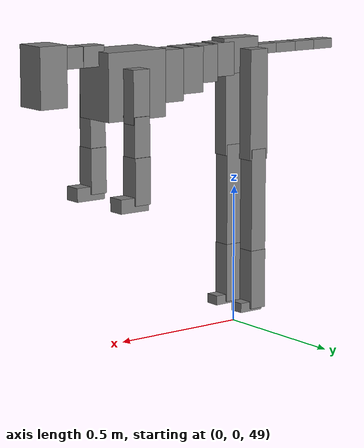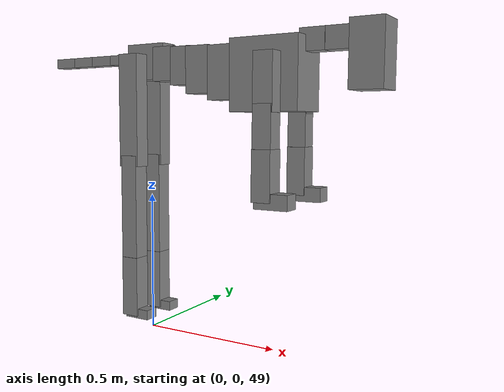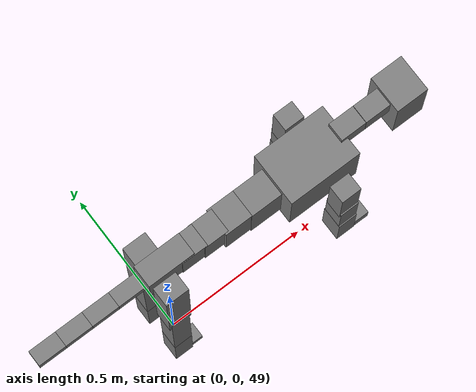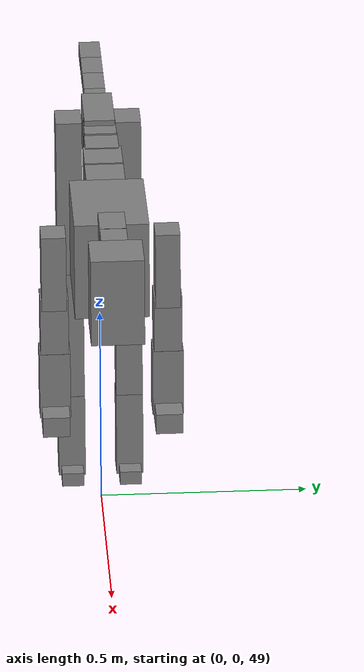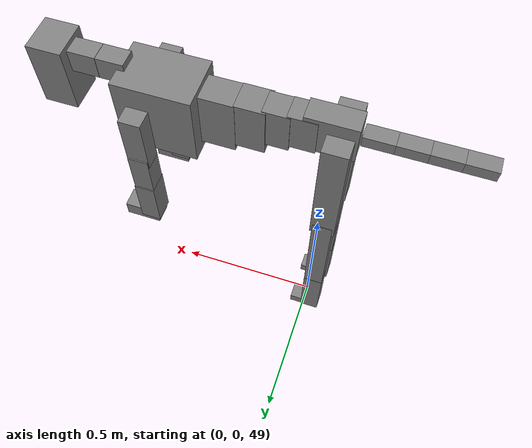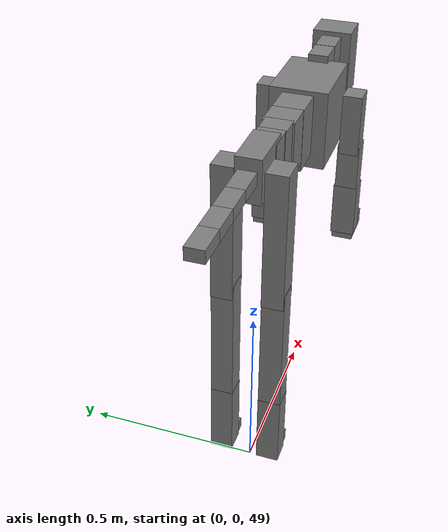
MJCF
<mujoco model="dog">

    <default>
        <joint armature="0.02" stiffness="1" damping="0.2" limited="true"/>
        <geom condim="3" friction="1 0.05 0.05" margin="0.01"/>
        <motor ctrllimited="true" ctrlrange="-1.0 1.0" forcelimited="true" gear="50"/>
    </default>

    <compiler inertiafromgeom="true" angle="radian"/>

    <option timestep="0.016" iterations="50" tolerance="1e-10" solver="Newton" jacobian="dense" cone="pyramidal"/>

    <size nconmax="20000" njmax="60000" nstack="5000000"/>
    <visual>
        <map force="0.1" zfar="30"/>
        <rgba haze="0.15 0.25 0.35 1"/>
        <quality shadowsize="2048"/>
        <global offwidth="800" offheight="800"/>
    </visual>

    <asset>
        <texture type="skybox" builtin="gradient" rgb1="0.3 0.5 0.7" rgb2="0 0 0" width="512" height="512"/>
        <texture name="texplane" type="2d" builtin="checker" rgb1=".2 .3 .4" rgb2=".1 0.15 0.2" width="512" height="512"
                 mark="cross" markrgb=".8 .8 .8"/>
        <texture name="texgeom" type="cube" builtin="flat" mark="cross" width="127" height="1278" rgb1="0.8 0.6 0.4"
                 rgb2="0.8 0.6 0.4" markrgb="1 1 1" random="0.01"/>

        <material name="matplane" reflectance="0.3" texture="texplane" texrepeat="1 1" texuniform="true"/>
        <material name="matgeom" texture="texgeom" texuniform="true" rgba="0.8 0.6 .4 1"/>
    </asset>

    <worldbody>
        <geom name="floor" pos="0 0 0" size="0 0 .25" type="plane" material="matplane" condim="3"/>

        <light directional="false" diffuse=".2 .2 .2" specular="0 0 0" pos="0 0 5" dir="0 0 -1" castshadow="false"/>
        <light mode="targetbodycom" target="torso" directional="false" diffuse=".8 .8 .8" specular="0.3 0.3 0.3"
               pos="0 0 4.0" dir="0 0 -1"/>

        <body name="root" pos="0 0 50">
            <freejoint name="root_1"/>
            <geom type="box" pos="0 0 -0.02" size="0.0774  0.0358  0.063" density="2030"/>

            <body name="spine1" pos="0.054 0 0">
                <joint name="spine1_y" axis="0 1 0" range="0 0.7" limited="true"/>
                <geom type="box" pos="0.02375 0 -0.03" size="0.04375  0.0375  0.05985" density="2030"/>

                <body name="spine2" pos="0.0612 0 0">
                    <joint name="spine2_y" axis="0 1 0" range="-0.15 0.15" limited="true"/>
                    <geom type="box" pos="0.03555  0  -0.04" size="0.04055  0.039  0.06615" density="2030"/>

                    <body name="spine3" pos="0.0730 0 0">
                        <joint name="spine3_y" axis="0 1 0" range="-0.15 0.15" limited="true"/>
                        <geom type="box" pos="0.03555  0  -0.057" size="0.04555  0.0445  0.081" density="2030"/>

                        <body name="spine4" pos="0.0780 0 0">
                            <joint name="spine4_y" axis="0 1 0" range="-0.15 0.15" limited="true"/>
                            <geom type="box" pos="0.05265  0  -0.07" size="0.05265  0.045  0.09135" density="2030"/>

                            <body name="torso" pos="0.1082 0 0">
                                <joint name="torso_y" axis="0 1 0" range="-0.15 0.15" limited="true"/>
                                <geom type="box" pos="0.11925  0  -0.085" size="0.11925  0.085  0.11745"
                                      density="2030"/>

                                <body name="neck1" pos="0.2160  0   0.0180">
                                    <joint name="neck1_y" axis="0 1 0" range="-1.2  -1" limited="true"/>
                                    <geom type="box" pos="0.0423  0  0" size="0.0423  0.03  0.036" density="2325"/>

                                    <body name="neck2" pos="0.0853  0  0">
                                        <joint name="neck2_y" axis="0 1 0" range="0.1  0" limited="true"/>
                                        <geom type="box" pos="0.0423  0  0" size="0.0423  0.03  0.036" density="2325"/>

                                        <body name="head" pos="0.0853  0  0">
                                            <joint name="head_y" axis="0 1 0" range="-0.3  -0.2" limited="true"/>
                                            <geom type="box" pos="0.0531  0  -0.055" size="0.0531  0.06  0.1044"
                                                  density="4030"/>

                                        </body>
                                    </body>
                                </body>

                                <body name="front_shoulder" pos="0.156  0   -0.0480">
                                    <joint name="front_shoulder_y" axis="0 1 0" range="-1 1.5" limited="true"/>
                                    <geom type="box" pos="0 0.13 -0.0659" size="0.0332  0.0284  0.0926" density="1158"/>
                                    <geom type="box" pos="0 -0.13 -0.0659" size="0.0332  0.0284  0.0926"
                                          density="1158"/>

                                    <body name="front_elbow" pos="0  0  -0.1319">
                                        <joint name="front_elbow_y" axis="0 1 0" range="-2 0" limited="true"/>
                                        <geom type="box" pos="0 0.13 -0.0758" size="0.0315  0.0322  0.0758"
                                              density="1081"/>
                                        <geom type="box" pos="0 -0.13 -0.0758" size="0.0315  0.0322  0.0758"
                                              density="1081"/>

                                        <body name="front_wrist" pos="0  0  -0.1516">
                                            <joint name="front_wrist_y" axis="0 1 0" range="-0.2 0" limited="true"/>
                                            <geom type="box" pos="0 0.13 -0.0682" size="0.0318  0.0354  0.0814"
                                                  density="1664"/>
                                            <geom type="box" pos="0 -0.13 -0.0682" size="0.0318  0.0354  0.0814"
                                                  density="1664"/>

                                            <body name="front_finger_end" pos="0  0  -0.1365">
                                                <joint name="front_finger_y" axis="0 1 0" range="-0.4 1"
                                                       limited="true"/>
                                                <geom type="box" pos="0.0312  0.13  -0.0096"
                                                      size="0.0572  0.0312  0.0246" density="1515"/>
                                                <geom type="box" pos="0.0312  -0.13  -0.0096"
                                                      size="0.0572  0.0312  0.0246" density="1515"/>

                                            </body>

                                        </body>
                                    </body>
                                </body>

                            </body>
                        </body>
                    </body>
                </body>
            </body>

            <body name="back_hip" pos="-0.03 0 -0.018">
                <joint name="back_hip_y" axis="0 1 0" range="-1.5 0.3" limited="true"/>
                <geom type="box" pos="0 0.07 -0.1759" size="0.0388  0.0305  0.1987" density="1154"/>
                <geom type="box" pos="0 -0.07 -0.1759" size="0.0388  0.0305  0.1987" density="1154"/>

                <body name="back_knee" pos="0  0  -0.3518">
                    <joint name="back_knee_y" axis="0 1 0" range="0 2.8" limited="true"/>
                    <geom type="box" pos="0 0.07 -0.1826" size="0.0320  0.0316  0.1981" density="1227"/>
                    <geom type="box" pos="0 -0.07 -0.1826" size="0.0320  0.0316  0.1981" density="1227"/>

                    <body name="back_ankle" pos="0  0  -0.3652">
                        <joint name="back_ankle_y" axis="0 1 0" range="-2.2 0" limited="true"/>
                        <geom type="box" pos="0 0.07 -0.0963" size="0.0322  0.0322  0.1075" density="1284"/>
                        <geom type="box" pos="0 -0.07 -0.0963" size="0.0322  0.0322  0.1075" density="1284"/>

                        <body name="back_toe_end" pos="0  0  -0.1925">
                            <joint name="back_toe_y" axis="0 1 0" range="-0.4 1" limited="true"/>
                            <geom type="box" pos="0.0262  0.07  -0.0022" size="0.0480  0.0262  0.0172" density="1515"/>
                            <geom type="box" pos="0.0262  -0.07  -0.0022" size="0.0480  0.0262  0.0172" density="1515"/>

                        </body>
                    </body>
                </body>
            </body>

            <body name="tail1" pos="-0.074 0 -0.006">
                <joint name="tail1_y" axis="0 1 0" range="-0.2 0.2" limited="true"/>
                <geom type="box" pos="-0.0536  0  0" size="0.045  0.025  0.0175" density="1587"/>

                <body name="tail2" pos="-0.09 0 0">
                    <joint name="tail2_y" axis="0 1 0" range="-0.2 0.2" limited="true"/>
                    <geom type="box" pos="-0.0536  0  0" size="0.045  0.025  0.0175" density="1587"/>

                    <body name="tail3" pos="-0.09 0 0">
                        <joint name="tail3_y" axis="0 1 0" range="-0.2 0.2" limited="true"/>
                        <geom type="box" pos="-0.0536  0  0" size="0.045  0.025  0.0175" density="1587"/>

                        <body name="tail4" pos="-0.09 0 0">
                            <joint name="tail4_y" axis="0 1 0" range="-0.2 0.2" limited="true"/>
                            <geom type="box" pos="-0.0536  0  0" size="0.045  0.025  0.0175" density="1587"/>

                        </body>
                    </body>
                </body>
            </body>
        </body>
    </worldbody>

    <actuator>
        <motor joint="spine1_y" forcerange="-150 150     "/>
        <motor joint="spine2_y" forcerange="-150 150     "/>
        <motor joint="spine3_y" forcerange="-150 150     "/>
        <motor joint="spine4_y" forcerange="-150 150     "/>
        <motor joint="torso_y" forcerange="-150 150     "/>
        <motor joint="neck1_y" forcerange="-100 100       "/>
        <motor joint="neck2_y" forcerange="-100 100       "/>
        <motor joint="head_y" forcerange="-150 150       "/>
        <motor joint="front_shoulder_y" forcerange="-168.27 120.90"/>
        <motor joint="front_elbow_y" forcerange="-146.80 187.06"/>
        <motor joint="front_wrist_y" forcerange="-140.57 142.32"/>
        <motor joint="front_finger_y" forcerange="-41.66 84.63"/>
        <motor joint="back_hip_y" forcerange="-232.85 373.33"/>
        <motor joint="back_knee_y" forcerange="-306.42 352.94"/>
        <motor joint="back_angle_y" forcerange="-182.95 233.04"/>
        <motor joint="back_toe_y" forcerange="-32.79 96.52"/>
        <motor joint="tail1_y" forcerange="-50 50     "/>
        <motor joint="tail2_y" forcerange="-50 50     "/>
        <motor joint="tail3_y" forcerange="-50 50     "/>
        <motor joint="tail4_y" forcerange="-50 50     "/>
    </actuator>
</mujoco>
